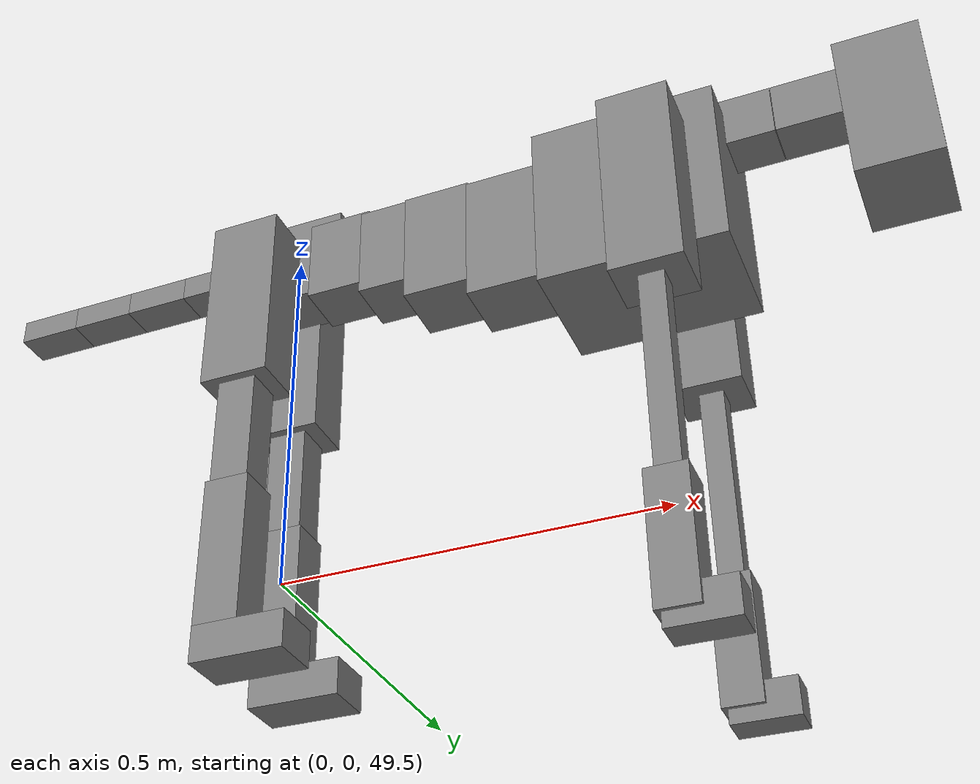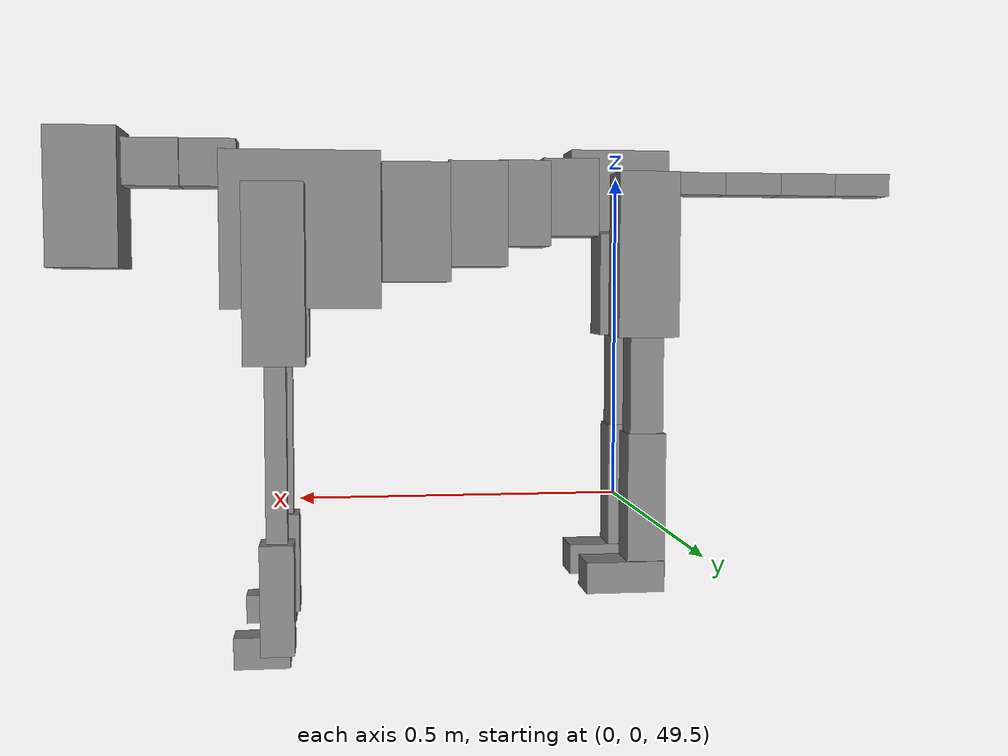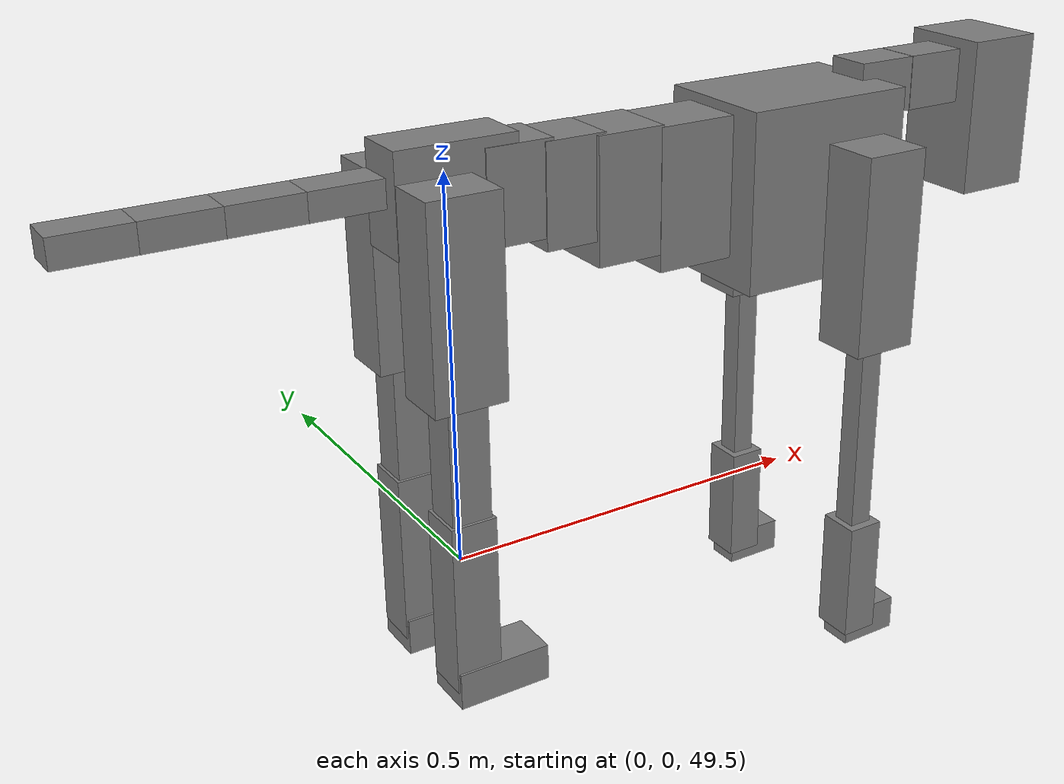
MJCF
<mujoco model="dog">

    <default>
        <joint armature="0.02" stiffness="1" damping="0.2" limited="true"/>
        <geom condim="3" friction="1 0.05 0.05" margin="0.01"/>
        <motor ctrllimited="true" ctrlrange="-1.0 1.0" forcelimited="true" gear="50"/>
    </default>

    <compiler inertiafromgeom="true" angle="radian"/>

    <option timestep="0.016" iterations="50" tolerance="1e-10" solver="Newton" jacobian="dense" cone="pyramidal"/>

    <size nconmax="20000" njmax="60000" nstack="5000000"/>
    <visual>
        <map force="0.1" zfar="30"/>
        <rgba haze="0.15 0.25 0.35 1"/>
        <quality shadowsize="2048"/>
        <global offwidth="800" offheight="800"/>
    </visual>

    <asset>
        <texture type="skybox" builtin="gradient" rgb1="0.3 0.5 0.7" rgb2="0 0 0" width="512" height="512"/>
        <texture name="texplane" type="2d" builtin="checker" rgb1=".2 .3 .4" rgb2=".1 0.15 0.2" width="512" height="512"
                 mark="cross" markrgb=".8 .8 .8"/>
        <texture name="texgeom" type="cube" builtin="flat" mark="cross" width="127" height="1278" rgb1="0.8 0.6 0.4"
                 rgb2="0.8 0.6 0.4" markrgb="1 1 1" random="0.01"/>

        <material name="matplane" reflectance="0.3" texture="texplane" texrepeat="1 1" texuniform="true"/>
        <material name="matgeom" texture="texgeom" texuniform="true" rgba="0.8 0.6 .4 1"/>
    </asset>

    <worldbody>
        <geom name="floor" pos="0 0 0" size="0 0 .25" type="plane" material="matplane" condim="3"/>

        <light directional="false" diffuse=".2 .2 .2" specular="0 0 0" pos="0 0 5" dir="0 0 -1" castshadow="false"/>
        <light mode="targetbodycom" target="torso" directional="false" diffuse=".8 .8 .8" specular="0.3 0.3 0.3"
               pos="0 0 4.0" dir="0 0 -1"/>

        <body name="root" pos="0 0 50">
            <freejoint name="root_1"/>
            <geom type="box" pos="0 0 -0.02" size="0.0774  0.0358  0.063" density="2030"/>

            <body name="spine1" pos="0.054 0 0">
                <joint name="spine1_y" axis="0 1 0" range="0 0.7" limited="true"/>
                <geom type="box" pos="0.02375 0 -0.03" size="0.04375  0.0375  0.05985" density="2030"/>

                <body name="spine2" pos="0.0612 0 0">
                    <joint name="spine2_y" axis="0 1 0" range="-0.15 0.15" limited="true"/>
                    <geom type="box" pos="0.03555  0  -0.04" size="0.04055  0.039  0.06615" density="2030"/>

                    <body name="spine3" pos="0.0730 0 0">
                        <joint name="spine3_y" axis="0 1 0" range="-0.15 0.15" limited="true"/>
                        <geom type="box" pos="0.03555  0  -0.057" size="0.04555  0.0445  0.081" density="2030"/>

                        <body name="spine4" pos="0.0780 0 0">
                            <joint name="spine4_y" axis="0 1 0" range="-0.15 0.15" limited="true"/>
                            <geom type="box" pos="0.05265  0  -0.07" size="0.05265  0.045  0.09135" density="2030"/>

                            <body name="torso" pos="0.1082 0 0">
                                <joint name="torso_y" axis="0 1 0" range="-0.15 0.15" limited="true"/>
                                <geom type="box" pos="0.11925  0  -0.085" size="0.11925  0.085  0.11745"
                                      density="2030"/>

                                <body name="neck1" pos="0.2160  0   0.0180">
                                    <joint name="neck1_y" axis="0 1 0" range="-1.2  -1" limited="true"/>
                                    <geom type="box" pos="0.0423  0  0" size="0.0423  0.03  0.036" density="2325"/>

                                    <body name="neck2" pos="0.0853  0  0">
                                        <joint name="neck2_y" axis="0 1 0" range="0.1  0" limited="true"/>
                                        <geom type="box" pos="0.0423  0  0" size="0.0423  0.03  0.036" density="2325"/>

                                        <body name="head" pos="0.0853  0  0">
                                            <joint name="head_y" axis="0 1 0" range="-0.3  -0.2" limited="true"/>
                                            <geom type="box" pos="0.0531  0  -0.055" size="0.0531  0.06  0.1044"
                                                  density="4030"/>

                                        </body>
                                    </body>
                                </body>

                                <body name="front_shoulder" pos="0.156  0   -0.0480">
                                    <joint name="front_shoulder_y" axis="0 1 0" range="-1 1.5" limited="true"/>
                                    <geom type="box" pos="0 0.13 -0.1045" size="0.0444  0.0380  0.1312" density="1158"/>
                                    <geom type="box" pos="0 -0.13 -0.1045" size="0.0444  0.0380  0.1312"
                                          density="1158"/>

                                    <body name="front_elbow" pos="0  0  -0.2091">
                                        <joint name="front_elbow_y" axis="0 1 0" range="-2 0" limited="true"/>
                                        <geom type="box" pos="0 0.13 -0.1497" size="0.0156  0.0160  0.1497"
                                              density="1081"/>
                                        <geom type="box" pos="0 -0.13 -0.1497" size="0.0156  0.0160  0.1497"
                                              density="1081"/>

                                        <body name="front_wrist" pos="0  0  -0.2995">
                                            <joint name="front_wrist_y" axis="0 1 0" range="-0.2 0" limited="true"/>
                                            <geom type="box" pos="0 0.13 -0.0686" size="0.0250  0.0278  0.0817"
                                                  density="1664"/>
                                            <geom type="box" pos="0 -0.13 -0.0686" size="0.0250  0.0278  0.0817"
                                                  density="1664"/>

                                            <body name="front_finger_end" pos="0  0  -0.1371">
                                                <joint name="front_finger_y" axis="0 1 0" range="-0.4 1"
                                                       limited="true"/>
                                                <geom type="box" pos="0.0224  0.13  -0.0084"
                                                      size="0.0410  0.0224  0.0234" density="1515"/>
                                                <geom type="box" pos="0.0224  -0.13  -0.0084"
                                                      size="0.0410  0.0224  0.0234" density="1515"/>

                                            </body>

                                        </body>
                                    </body>
                                </body>

                            </body>
                        </body>
                    </body>
                </body>
            </body>

            <body name="back_hip" pos="-0.03 0 -0.018">
                <joint name="back_hip_y" axis="0 1 0" range="-1.5 0.3" limited="true"/>
                <geom type="box" pos="0 0.07 -0.1027" size="0.0467  0.0367  0.1255" density="1154"/>
                <geom type="box" pos="0 -0.07 -0.1027" size="0.0467  0.0367  0.1255" density="1154"/>

                <body name="back_knee" pos="0  0  -0.2053">
                    <joint name="back_knee_y" axis="0 1 0" range="0 2.8" limited="true"/>
                    <geom type="box" pos="0 0.07 -0.0911" size="0.0257  0.0253  0.1066" density="1227"/>
                    <geom type="box" pos="0 -0.07 -0.0911" size="0.0257  0.0253  0.1066" density="1227"/>

                    <body name="back_ankle" pos="0  0  -0.1821">
                        <joint name="back_ankle_y" axis="0 1 0" range="-2.2 0" limited="true"/>
                        <geom type="box" pos="0 0.07 -0.1006" size="0.0296  0.0296  0.1118" density="1284"/>
                        <geom type="box" pos="0 -0.07 -0.1006" size="0.0296  0.0296  0.1118" density="1284"/>

                        <body name="back_toe_end" pos="0  0  -0.2012">
                            <joint name="back_toe_y" axis="0 1 0" range="-0.4 1" limited="true"/>
                            <geom type="box" pos="0.0330  0.07  -0.0089" size="0.0605  0.0330  0.0239" density="1515"/>
                            <geom type="box" pos="0.0330  -0.07  -0.0089" size="0.0605  0.0330  0.0239" density="1515"/>

                        </body>
                    </body>
                </body>
            </body>

            <body name="tail1" pos="-0.074 0 -0.006">
                <joint name="tail1_y" axis="0 1 0" range="-0.2 0.2" limited="true"/>
                <geom type="box" pos="-0.0536  0  0" size="0.045  0.025  0.0175" density="1587"/>

                <body name="tail2" pos="-0.09 0 0">
                    <joint name="tail2_y" axis="0 1 0" range="-0.2 0.2" limited="true"/>
                    <geom type="box" pos="-0.0536  0  0" size="0.045  0.025  0.0175" density="1587"/>

                    <body name="tail3" pos="-0.09 0 0">
                        <joint name="tail3_y" axis="0 1 0" range="-0.2 0.2" limited="true"/>
                        <geom type="box" pos="-0.0536  0  0" size="0.045  0.025  0.0175" density="1587"/>

                        <body name="tail4" pos="-0.09 0 0">
                            <joint name="tail4_y" axis="0 1 0" range="-0.2 0.2" limited="true"/>
                            <geom type="box" pos="-0.0536  0  0" size="0.045  0.025  0.0175" density="1587"/>

                        </body>
                    </body>
                </body>
            </body>
        </body>
    </worldbody>

    <actuator>
        <motor joint="spine1_y" forcerange="-150 150     "/>
        <motor joint="spine2_y" forcerange="-150 150     "/>
        <motor joint="spine3_y" forcerange="-150 150     "/>
        <motor joint="spine4_y" forcerange="-150 150     "/>
        <motor joint="torso_y" forcerange="-150 150     "/>
        <motor joint="neck1_y" forcerange="-100 100       "/>
        <motor joint="neck2_y" forcerange="-100 100       "/>
        <motor joint="head_y" forcerange="-150 150       "/>
        <motor joint="front_shoulder_y" forcerange="-177.34 175.88"/>
        <motor joint="front_elbow_y" forcerange="-113.72 102.47"/>
        <motor joint="front_wrist_y" forcerange="-134.52 87.96"/>
        <motor joint="front_finger_y" forcerange="-53.18 26.19"/>
        <motor joint="back_hip_y" forcerange="-367.74 321.06"/>
        <motor joint="back_knee_y" forcerange="-267.27 301.20"/>
        <motor joint="back_angle_y" forcerange="-181.41 191.47"/>
        <motor joint="back_toe_y" forcerange="-125.46 58.37"/>
        <motor joint="tail1_y" forcerange="-50 50     "/>
        <motor joint="tail2_y" forcerange="-50 50     "/>
        <motor joint="tail3_y" forcerange="-50 50     "/>
        <motor joint="tail4_y" forcerange="-50 50     "/>
    </actuator>
</mujoco>
